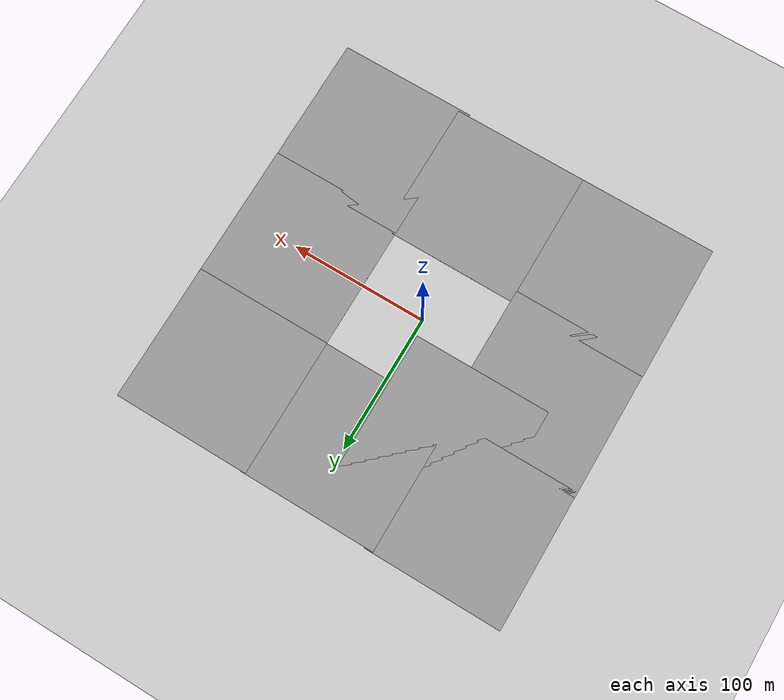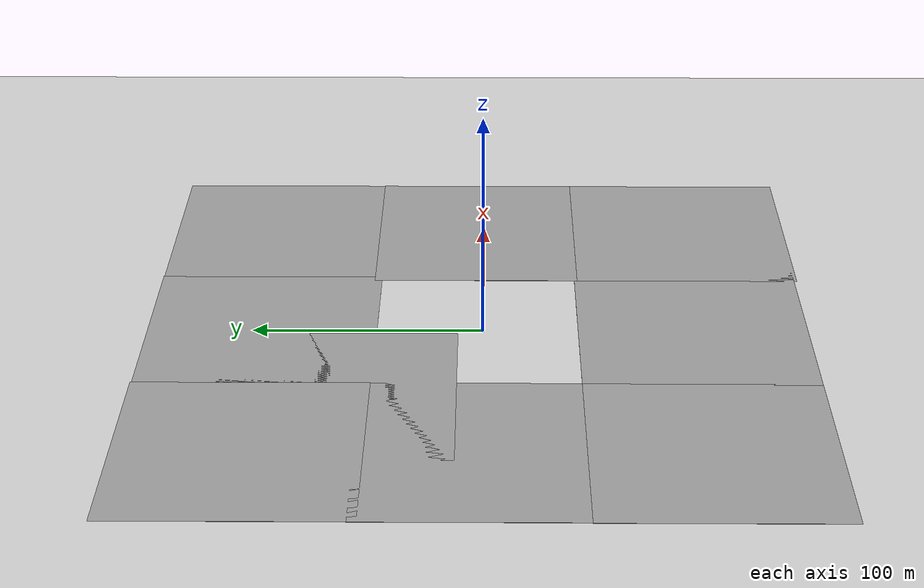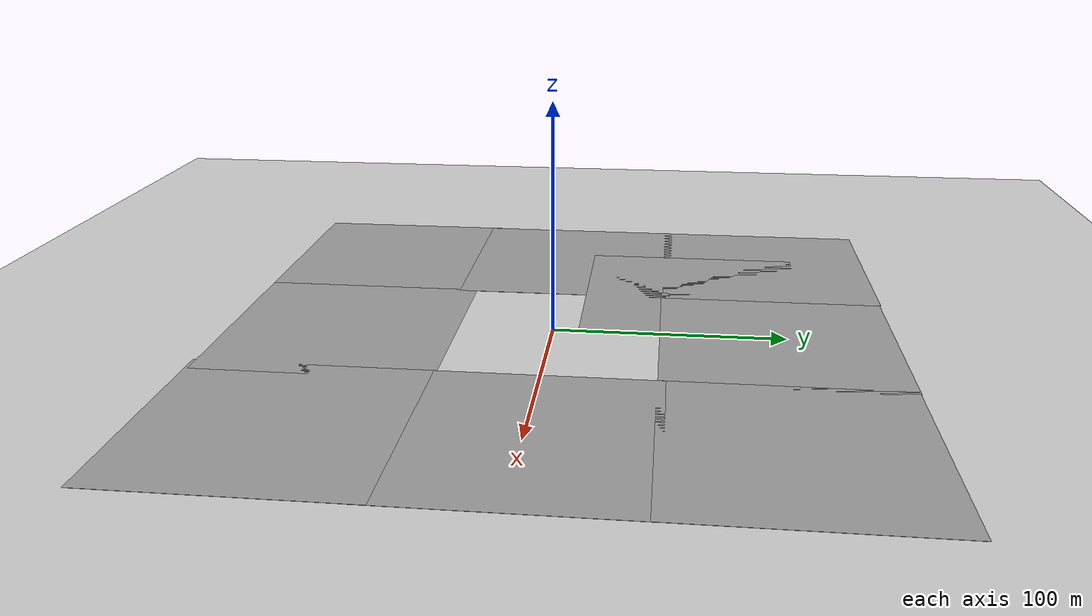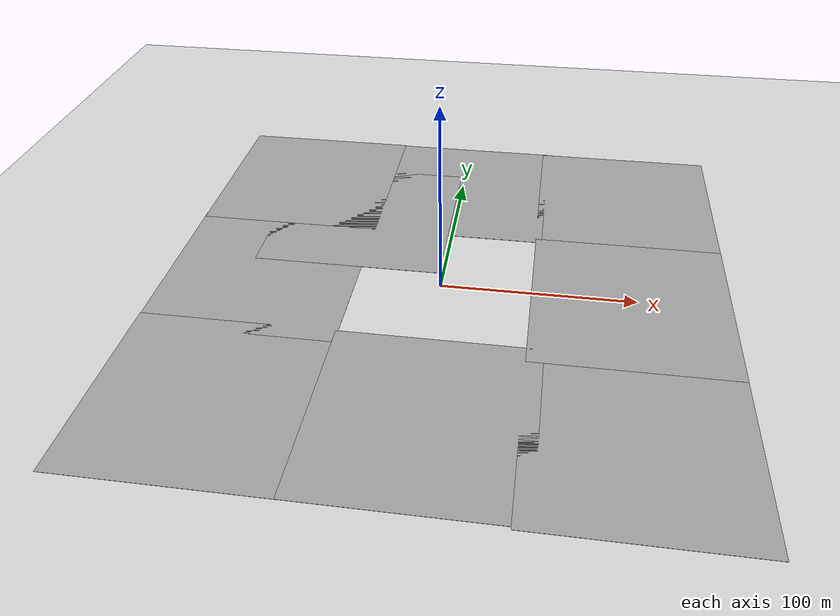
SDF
<sdf version="1.6">
 <world name="default">
  <light name="sun" type="directional">
   <pose>0 0 10 0 -0 0</pose>
   <diffuse>0.8 0.8 0.8 1</diffuse>
   <specular>0.1 0.1 0.1 1</specular>
   <attenuation>
    <range>1000</range>
    <constant>0.9</constant>
    <linear>0.01</linear>
    <quadratic>0.001</quadratic>
   </attenuation>
   <direction>-0.5 0.5 -1</direction>
  </light>
  <model name="ground_plane">
   <static>1</static>
   <link name="link">
    <collision name="collision">
     <geometry><plane><normal>0 0 1</normal><size>100 100</size></plane></geometry>
     <surface><friction><ode><mu>100</mu><mu2>50</mu2></ode></friction></surface>
    </collision>
    <visual name="visual">
     <cast_shadows>0</cast_shadows>
     <geometry><plane><normal>0 0 1</normal><size>100 100</size></plane></geometry>
     <material>
      <script><uri>file://media/materials/scripts/gazebo.material</uri><name>Gazebo/Grey</name></script>
     </material>
    </visual>
   </link>
  </model>
  <gravity>0 0 -9.8</gravity>
  <magnetic_field>6e-06 2.3e-05 -4.2e-05</magnetic_field>
  <atmosphere type="adiabatic"/>
  <physics name="default_physics" default="0" type="ode">
   <max_step_size>0.001</max_step_size>
   <real_time_factor>1</real_time_factor>
   <real_time_update_rate>1000</real_time_update_rate>
  </physics>
  <scene><ambient>0.4 0.4 0.4 1</ambient><background>0.7 0.7 0.7 1</background><shadows>1</shadows></scene>
  <spherical_coordinates>
   <surface_model>EARTH_WGS84</surface_model>
   <latitude_deg>0</latitude_deg>
   <longitude_deg>0</longitude_deg>
   <elevation>0</elevation>
   <heading_deg>0</heading_deg>
  </spherical_coordinates>
  <model name="ground_plane_0">
   <static>1</static>
   <link name="link">
    <collision name="collision">
     <geometry><plane><normal>0 0 1</normal><size>100 100</size></plane></geometry>
     <surface><friction><ode><mu>100</mu><mu2>50</mu2></ode></friction></surface>
    </collision>
    <visual name="visual">
     <cast_shadows>0</cast_shadows>
     <geometry><plane><normal>0 0 1</normal><size>100 100</size></plane></geometry>
     <material>
      <script><uri>file://media/materials/scripts/gazebo.material</uri><name>Gazebo/Grey</name></script>
     </material>
    </visual>
   </link>
   <pose>-52.3305 60.8345 0 0 -0 0</pose>
  </model>
  <model name="ground_plane_1">
   <static>1</static>
   <link name="link">
    <collision name="collision">
     <geometry><plane><normal>0 0 1</normal><size>100 100</size></plane></geometry>
     <surface><friction><ode><mu>100</mu><mu2>50</mu2></ode></friction></surface>
    </collision>
    <visual name="visual">
     <cast_shadows>0</cast_shadows>
     <geometry><plane><normal>0 0 1</normal><size>100 100</size></plane></geometry>
     <material>
      <script><uri>file://media/materials/scripts/gazebo.material</uri><name>Gazebo/Grey</name></script>
     </material>
    </visual>
   </link>
   <pose>-93.9335 0.418575 0 0 -0 0</pose>
  </model>
  <model name="ground_plane_2">
   <static>1</static>
   <link name="link">
    <collision name="collision">
     <geometry><plane><normal>0 0 1</normal><size>100 100</size></plane></geometry>
     <surface><friction><ode><mu>100</mu><mu2>50</mu2></ode></friction></surface>
    </collision>
    <visual name="visual">
     <cast_shadows>0</cast_shadows>
     <geometry><plane><normal>0 0 1</normal><size>100 100</size></plane></geometry>
     <material>
      <script><uri>file://media/materials/scripts/gazebo.material</uri><name>Gazebo/Grey</name></script>
     </material>
    </visual>
   </link>
   <pose>-93.7687 96.6738 0 0 -0 0</pose>
  </model>
  <model name="ground_plane_3">
   <static>1</static>
   <link name="link">
    <collision name="collision">
     <geometry><plane><normal>0 0 1</normal><size>100 100</size></plane></geometry>
     <surface><friction><ode><mu>100</mu><mu2>50</mu2></ode></friction></surface>
    </collision>
    <visual name="visual">
     <cast_shadows>0</cast_shadows>
     <geometry><plane><normal>0 0 1</normal><size>100 100</size></plane></geometry>
     <material>
      <script><uri>file://media/materials/scripts/gazebo.material</uri><name>Gazebo/Grey</name></script>
     </material>
    </visual>
   </link>
   <pose>-0.211884 96.0732 0 0 -0 0</pose>
  </model>
  <model name="ground_plane_4">
   <static>1</static>
   <link name="link">
    <collision name="collision">
     <geometry><plane><normal>0 0 1</normal><size>100 100</size></plane></geometry>
     <surface><friction><ode><mu>100</mu><mu2>50</mu2></ode></friction></surface>
    </collision>
    <visual name="visual">
     <cast_shadows>0</cast_shadows>
     <geometry><plane><normal>0 0 1</normal><size>100 100</size></plane></geometry>
     <material>
      <script><uri>file://media/materials/scripts/gazebo.material</uri><name>Gazebo/Grey</name></script>
     </material>
    </visual>
   </link>
   <pose>-94.1916 -91.3553 0 0 -0 0</pose>
  </model>
  <model name="ground_plane_5">
   <static>1</static>
   <link name="link">
    <collision name="collision">
     <geometry><plane><normal>0 0 1</normal><size>100 100</size></plane></geometry>
     <surface><friction><ode><mu>100</mu><mu2>50</mu2></ode></friction></surface>
    </collision>
    <visual name="visual">
     <cast_shadows>0</cast_shadows>
     <geometry><plane><normal>0 0 1</normal><size>100 100</size></plane></geometry>
     <material>
      <script><uri>file://media/materials/scripts/gazebo.material</uri><name>Gazebo/Grey</name></script>
     </material>
    </visual>
   </link>
   <pose>96.4645 95.7515 0 0 -0 0</pose>
  </model>
  <model name="ground_plane_6">
   <static>1</static>
   <link name="link">
    <collision name="collision">
     <geometry><plane><normal>0 0 1</normal><size>100 100</size></plane></geometry>
     <surface><friction><ode><mu>100</mu><mu2>50</mu2></ode></friction></surface>
    </collision>
    <visual name="visual">
     <cast_shadows>0</cast_shadows>
     <geometry><plane><normal>0 0 1</normal><size>100 100</size></plane></geometry>
     <material>
      <script><uri>file://media/materials/scripts/gazebo.material</uri><name>Gazebo/Grey</name></script>
     </material>
    </visual>
   </link>
   <pose>96.5458 -0.656382 0 0 -0 0</pose>
  </model>
  <model name="ground_plane_7">
   <static>1</static>
   <link name="link">
    <collision name="collision">
     <geometry><plane><normal>0 0 1</normal><size>100 100</size></plane></geometry>
     <surface><friction><ode><mu>100</mu><mu2>50</mu2></ode></friction></surface>
    </collision>
    <visual name="visual">
     <cast_shadows>0</cast_shadows>
     <geometry><plane><normal>0 0 1</normal><size>100 100</size></plane></geometry>
     <material>
      <script><uri>file://media/materials/scripts/gazebo.material</uri><name>Gazebo/Grey</name></script>
     </material>
    </visual>
   </link>
   <pose>4.78418 -91.3284 0 0 -0 0</pose>
  </model>
  <model name="ground_plane_8">
   <static>1</static>
   <link name="link">
    <collision name="collision">
     <geometry><plane><normal>0 0 1</normal><size>100 100</size></plane></geometry>
     <surface><friction><ode><mu>100</mu><mu2>50</mu2></ode></friction></surface>
    </collision>
    <visual name="visual">
     <cast_shadows>0</cast_shadows>
     <geometry><plane><normal>0 0 1</normal><size>100 100</size></plane></geometry>
     <material>
      <script><uri>file://media/materials/scripts/gazebo.material</uri><name>Gazebo/Grey</name></script>
     </material>
    </visual>
   </link>
   <pose>96.4708 -92.66 0 0 -0 0</pose>
  </model>
 </world>
</sdf>
